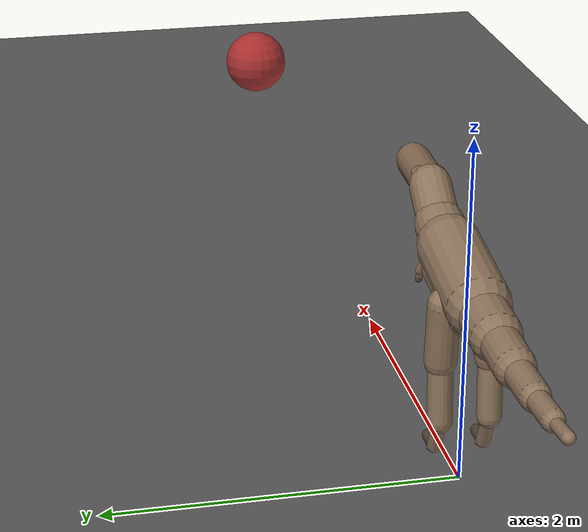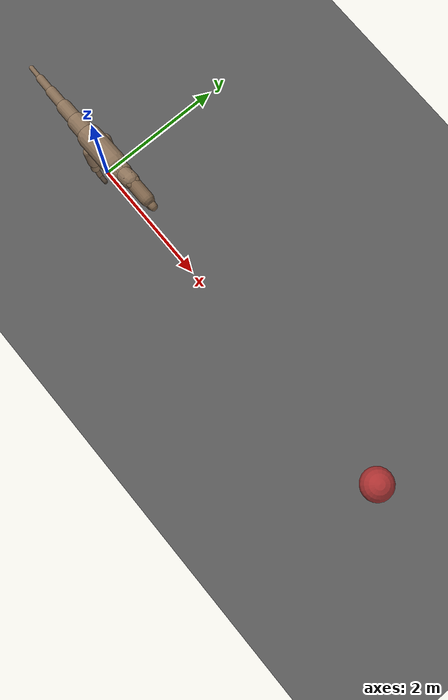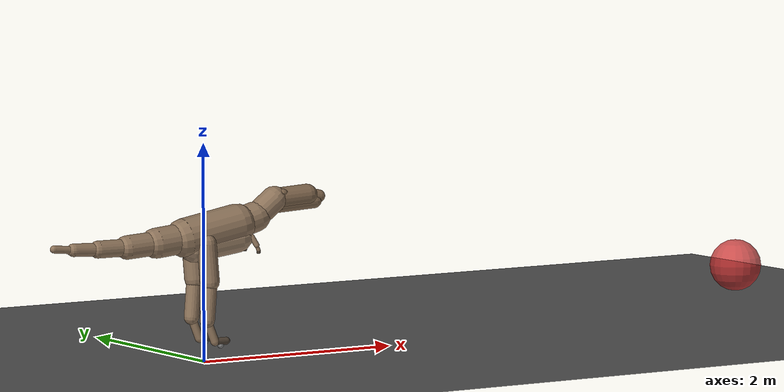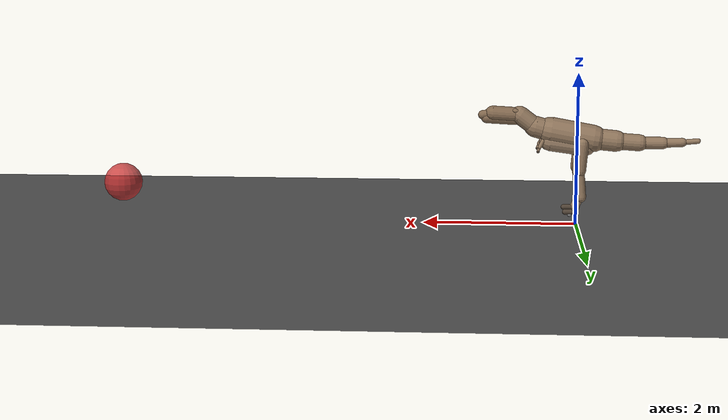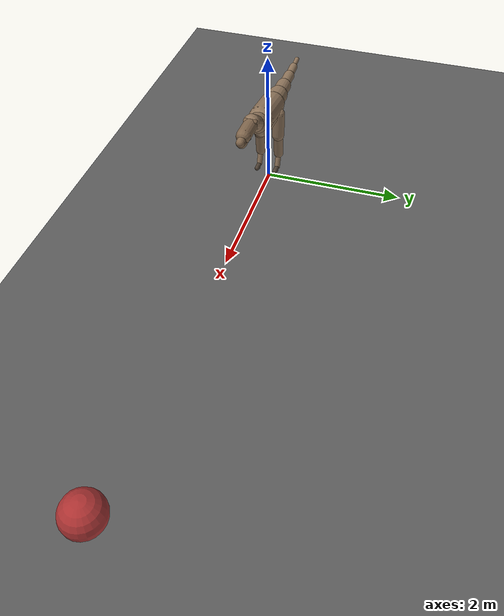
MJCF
<mujoco model="tyrannosaurus_rex">
  <compiler angle="degree" autolimits="true"/>

  <option timestep="0.002" gravity="0 0 -9.81">
    <flag warmstart="enable"/>
  </option>

  <default>
    <joint limited="true" damping="8.0" armature="0.05"/>
    <geom contype="1" conaffinity="1" friction="1.2 0.005 0.0001"/>
    <motor ctrllimited="true" ctrlrange="-1 1"/>

    <!-- Leg joints: high stiffness for massive biped -->
    <default class="leg_joint">
      <joint damping="15.0" armature="0.1"/>
    </default>

    <!-- Tail joints: very stiff, acts as heavy counterbalance to skull -->
    <default class="tail_joint">
      <joint damping="20.0" stiffness="40.0" armature="0.05" range="-12 12"/>
    </default>

    <!-- Jaw joint -->
    <default class="jaw_joint">
      <joint damping="5.0" armature="0.02"/>
    </default>
  </default>

  <asset>
    <texture type="skybox" builtin="gradient" rgb1="0.6 0.8 1.0" rgb2="0.2 0.4 0.6"
             width="256" height="256"/>
    <texture name="grid" type="2d" builtin="checker" rgb1="0.4 0.4 0.4" rgb2="0.3 0.3 0.3"
             width="512" height="512"/>
    <material name="grid_mat" texture="grid" texrepeat="8 8" reflectance="0.1"/>
    <material name="body_mat" rgba="0.55 0.45 0.35 1"/>
    <material name="belly_mat" rgba="0.6 0.5 0.4 1"/>
    <material name="head_mat" rgba="0.5 0.4 0.3 1"/>
    <material name="claw_mat" rgba="0.3 0.25 0.2 1"/>
    <material name="tooth_mat" rgba="0.9 0.88 0.8 1"/>
  </asset>

  <worldbody>
    <!-- Ground plane -->
    <geom name="floor" type="plane" size="100 100 0.1" material="grid_mat"
          conaffinity="1" contype="1"/>

    <!-- Prey target (mocap body) -->
    <body name="prey" mocap="true" pos="6 0 0.5">
      <geom name="prey_geom" type="sphere" size="0.25" rgba="0.8 0.2 0.2 0.8"
            contype="2" conaffinity="2"/>
    </body>

    <!-- ==================== T-REX BODY ==================== -->

    <body name="pelvis" pos="0 0 1.15">
      <freejoint name="root"/>

      <!-- Main torso: forward-leaning, angled ~30 deg from horizontal -->
      <!-- Pelvis region (rear of torso, widest part) -->
      <geom name="torso" type="capsule" fromto="-0.2 0 0  0.35 0 0.1" size="0.18"
            mass="20.0" material="body_mat"/>

      <!-- Ribcage (front of torso, narrowing toward neck) -->
      <geom name="ribcage" type="capsule" fromto="0.3 0 0.08  0.55 0 0.15" size="0.14"
            mass="10.0" material="body_mat"/>

      <!-- Belly (adds mass lower for stability) -->
      <geom name="belly" type="capsule" fromto="-0.1 0 -0.08  0.35 0 -0.02" size="0.15"
            mass="5.0" material="belly_mat"/>

      <!-- IMU sensor site (center of mass region) -->
      <site name="imu" pos="0.1 0 0.05" size="0.03"/>

      <!-- ==================== NECK + HEAD ==================== -->
      <!-- Short, thick, muscular neck angling up to massive skull -->

      <body name="neck" pos="0.55 0 0.15">
        <joint name="neck_pitch" type="hinge" axis="0 1 0" range="-30 40"
               damping="12.0" armature="0.05"/>
        <joint name="neck_yaw" type="hinge" axis="0 0 1" range="-20 20"
               damping="10.0" armature="0.03"/>
        <geom name="neck_geom" type="capsule" fromto="0 0 0  0.2 0 0.15" size="0.12"
              mass="5.0" material="body_mat" contype="0" conaffinity="0"/>

        <!-- Skull: massive, elongated, deep -->
        <body name="skull" pos="0.2 0 0.15">
          <joint name="head_pitch" type="hinge" axis="0 1 0" range="-25 35"
                 damping="8.0" armature="0.03"/>
          <!-- Upper skull -->
          <geom name="skull_upper" type="capsule" fromto="0 0 0  0.35 0 0.02" size="0.1"
                mass="6.0" material="head_mat"/>
          <!-- Brow ridges (T-Rex had prominent brow horns) -->
          <geom name="brow_ridge" type="ellipsoid" pos="0.05 0 0.06" size="0.08 0.1 0.04"
                mass="0.5" material="head_mat" contype="0" conaffinity="0"/>
          <!-- Snout (narrowing toward front) -->
          <geom name="snout" type="capsule" fromto="0.3 0 0.02  0.48 0 0" size="0.06"
                mass="2.0" material="head_mat"/>

          <!-- Head tip sensor for bite detection -->
          <site name="head_tip" pos="0.48 0 0" size="0.02"/>

          <!-- Jaw (lower mandible) -->
          <body name="jaw" pos="0.05 0 -0.06">
            <joint name="jaw_joint" class="jaw_joint" type="hinge" axis="0 1 0" range="-35 5"/>
            <geom name="jaw_geom" type="capsule" fromto="0 0 0  0.38 0 0.02" size="0.07"
                  mass="3.0" material="head_mat"/>
            <!-- Jaw contact geom for bite detection -->
            <geom name="jaw_bite" type="box" pos="0.35 0 0.04" size="0.06 0.05 0.02"
                  mass="0.2" material="tooth_mat" contype="2" conaffinity="2"/>
            <site name="jaw_tip" pos="0.38 0 0.02" size="0.015"/>
          </body>
        </body>
      </body>

      <!-- ==================== TAIL ==================== -->
      <!-- 5 segments, heavy, muscular - primary counterbalance to skull -->
      <!-- Starts thick at pelvis, tapers to tip -->

      <body name="tail_1" pos="-0.2 0 0">
        <joint name="tail_1_pitch" class="tail_joint" type="hinge" axis="0 1 0"/>
        <joint name="tail_1_yaw" class="tail_joint" type="hinge" axis="0 0 1" range="-8 8"/>
        <geom name="tail_1_geom" type="capsule" fromto="0 0 0  -0.3 0 -0.03" size="0.14"
              mass="6.0" material="body_mat" contype="0" conaffinity="0"/>

        <body name="tail_2" pos="-0.3 0 -0.03">
          <joint name="tail_2_pitch" class="tail_joint" type="hinge" axis="0 1 0"/>
          <geom name="tail_2_geom" type="capsule" fromto="0 0 0  -0.3 0 -0.02" size="0.11"
                mass="4.5" material="body_mat" contype="0" conaffinity="0"/>

          <body name="tail_3" pos="-0.3 0 -0.02">
            <joint name="tail_3_pitch" class="tail_joint" type="hinge" axis="0 1 0"/>
            <geom name="tail_3_geom" type="capsule" fromto="0 0 0  -0.3 0 0" size="0.08"
                  mass="3.0" material="body_mat" contype="0" conaffinity="0"/>

            <body name="tail_4" pos="-0.3 0 0">
              <joint name="tail_4_pitch" class="tail_joint" type="hinge" axis="0 1 0"/>
              <geom name="tail_4_geom" type="capsule" fromto="0 0 0  -0.25 0 0.01" size="0.06"
                    mass="1.5" material="body_mat" contype="0" conaffinity="0"/>

              <body name="tail_5" pos="-0.25 0 0.01">
                <joint name="tail_5_pitch" class="tail_joint" type="hinge" axis="0 1 0"/>
                <geom name="tail_5_geom" type="capsule" fromto="0 0 0  -0.2 0 0.02" size="0.035"
                      mass="0.6" material="body_mat" contype="0" conaffinity="0"/>
                <site name="tail_tip" pos="-0.2 0 0.02" size="0.015"/>
              </body>
            </body>
          </body>
        </body>
      </body>

      <!-- ==================== RIGHT LEG ==================== -->
      <!-- Massive, powerful digitigrade legs -->
      <!-- Hip -> Thigh -> Tibia -> Metatarsus -> Toes -->

      <body name="r_thigh" pos="-0.05 -0.14 -0.05">
        <!-- Hip: 2 DOF -->
        <joint name="r_hip_pitch" class="leg_joint" type="hinge" axis="0 1 0" range="-50 80"/>
        <joint name="r_hip_roll" class="leg_joint" type="hinge" axis="1 0 0" range="-25 25"/>
        <geom name="r_thigh_geom" type="capsule" fromto="0 0 0  0.03 0 -0.35" size="0.09"
              mass="5.0" material="body_mat"/>

        <body name="r_tibia" pos="0.03 0 -0.35">
          <!-- Knee: 1 DOF -->
          <joint name="r_knee" class="leg_joint" type="hinge" axis="0 1 0" range="-110 -10"/>
          <geom name="r_tibia_geom" type="capsule" fromto="0 0 0  -0.03 0 -0.35" size="0.07"
                mass="3.5" material="body_mat"/>

          <body name="r_metatarsus" pos="-0.03 0 -0.35">
            <!-- Ankle: 1 DOF (digitigrade stance) -->
            <joint name="r_ankle" class="leg_joint" type="hinge" axis="0 1 0" range="50 150"/>
            <geom name="r_metatarsus_geom" type="capsule" fromto="0 0 0  0.08 0 -0.2" size="0.04"
                  mass="1.2" material="body_mat"/>

            <!-- Toes (3 forward-facing digits fused as one contact pad) -->
            <body name="r_toe" pos="0.08 0 -0.2">
              <joint name="r_toe_joint" class="leg_joint" type="hinge" axis="0 1 0" range="-25 50"/>
              <geom name="r_toe_geom" type="capsule" fromto="0 0 0  0.12 0 0" size="0.035"
                    mass="0.4" material="claw_mat"/>
              <site name="r_foot" pos="0.06 0 -0.035" size="0.03"/>
            </body>
          </body>
        </body>
      </body>

      <!-- ==================== LEFT LEG ==================== -->

      <body name="l_thigh" pos="-0.05 0.14 -0.05">
        <joint name="l_hip_pitch" class="leg_joint" type="hinge" axis="0 1 0" range="-50 80"/>
        <joint name="l_hip_roll" class="leg_joint" type="hinge" axis="1 0 0" range="-25 25"/>
        <geom name="l_thigh_geom" type="capsule" fromto="0 0 0  0.03 0 -0.35" size="0.09"
              mass="5.0" material="body_mat"/>

        <body name="l_tibia" pos="0.03 0 -0.35">
          <joint name="l_knee" class="leg_joint" type="hinge" axis="0 1 0" range="-110 -10"/>
          <geom name="l_tibia_geom" type="capsule" fromto="0 0 0  -0.03 0 -0.35" size="0.07"
                mass="3.5" material="body_mat"/>

          <body name="l_metatarsus" pos="-0.03 0 -0.35">
            <joint name="l_ankle" class="leg_joint" type="hinge" axis="0 1 0" range="50 150"/>
            <geom name="l_metatarsus_geom" type="capsule" fromto="0 0 0  0.08 0 -0.2" size="0.04"
                  mass="1.2" material="body_mat"/>

            <body name="l_toe" pos="0.08 0 -0.2">
              <joint name="l_toe_joint" class="leg_joint" type="hinge" axis="0 1 0" range="-25 50"/>
              <geom name="l_toe_geom" type="capsule" fromto="0 0 0  0.12 0 0" size="0.035"
                    mass="0.4" material="claw_mat"/>
              <site name="l_foot" pos="0.06 0 -0.035" size="0.03"/>
            </body>
          </body>
        </body>
      </body>

      <!-- ==================== FORELIMBS (vestigial) ==================== -->
      <!-- T-Rex arms: tiny, 2 fingers, very limited range -->
      <!-- Not actuated - purely cosmetic/passive -->

      <body name="r_arm" pos="0.45 -0.1 -0.02">
        <joint name="r_shoulder" type="ball" damping="3.0" range="0 30"/>
        <geom name="r_upper_arm_geom" type="capsule" fromto="0 0 0  0.04 -0.02 -0.08" size="0.025"
              mass="0.3" material="body_mat"/>
        <body name="r_forearm" pos="0.04 -0.02 -0.08">
          <joint name="r_elbow" type="hinge" axis="0 1 0" range="-40 10" damping="2.0"/>
          <geom name="r_forearm_geom" type="capsule" fromto="0 0 0  0.02 0 -0.05" size="0.018"
                mass="0.1" material="body_mat"/>
          <!-- Two-fingered hand -->
          <geom name="r_hand" type="sphere" pos="0.02 0 -0.06" size="0.02"
                mass="0.05" material="claw_mat"/>
        </body>
      </body>

      <body name="l_arm" pos="0.45 0.1 -0.02">
        <joint name="l_shoulder" type="ball" damping="3.0" range="0 30"/>
        <geom name="l_upper_arm_geom" type="capsule" fromto="0 0 0  0.04 0.02 -0.08" size="0.025"
              mass="0.3" material="body_mat"/>
        <body name="l_forearm" pos="0.04 0.02 -0.08">
          <joint name="l_elbow" type="hinge" axis="0 1 0" range="-40 10" damping="2.0"/>
          <geom name="l_forearm_geom" type="capsule" fromto="0 0 0  0.02 0 -0.05" size="0.018"
                mass="0.1" material="body_mat"/>
          <geom name="l_hand" type="sphere" pos="0.02 0 -0.06" size="0.02"
                mass="0.05" material="claw_mat"/>
        </body>
      </body>

    </body> <!-- end pelvis -->
  </worldbody>

  <!-- ==================== ACTUATORS ==================== -->
  <!-- Position actuators for locomotion, motor for jaw -->

  <actuator>
    <!-- Head/neck control -->
    <position name="neck_pitch_act" joint="neck_pitch" kp="150" ctrlrange="-30 40"/>
    <position name="neck_yaw_act" joint="neck_yaw" kp="100" ctrlrange="-20 20"/>
    <position name="head_pitch_act" joint="head_pitch" kp="80" ctrlrange="-25 35"/>
    <motor name="jaw_act" joint="jaw_joint" gear="80" ctrlrange="-1 1"/>

    <!-- Right leg -->
    <position name="r_hip_pitch_act" joint="r_hip_pitch" kp="200" ctrlrange="-50 80"/>
    <position name="r_hip_roll_act" joint="r_hip_roll" kp="150" ctrlrange="-25 25"/>
    <position name="r_knee_act" joint="r_knee" kp="250" ctrlrange="-110 -10"/>
    <position name="r_ankle_act" joint="r_ankle" kp="150" ctrlrange="50 150"/>
    <position name="r_toe_act" joint="r_toe_joint" kp="60" ctrlrange="-25 50"/>

    <!-- Left leg -->
    <position name="l_hip_pitch_act" joint="l_hip_pitch" kp="200" ctrlrange="-50 80"/>
    <position name="l_hip_roll_act" joint="l_hip_roll" kp="150" ctrlrange="-25 25"/>
    <position name="l_knee_act" joint="l_knee" kp="250" ctrlrange="-110 -10"/>
    <position name="l_ankle_act" joint="l_ankle" kp="150" ctrlrange="50 150"/>
    <position name="l_toe_act" joint="l_toe_joint" kp="60" ctrlrange="-25 50"/>
  </actuator>

  <!-- ==================== SENSORS ==================== -->

  <sensor>
    <!-- IMU-like sensors on pelvis -->
    <gyro name="pelvis_gyro" site="imu"/>
    <accelerometer name="pelvis_accel" site="imu"/>
    <framequat name="pelvis_orientation" objtype="site" objname="imu"/>

    <!-- Foot contact forces -->
    <touch name="r_foot_touch" site="r_foot"/>
    <touch name="l_foot_touch" site="l_foot"/>

    <!-- Head/jaw positions for bite detection -->
    <framepos name="head_tip_pos" objtype="site" objname="head_tip"/>
    <framepos name="jaw_tip_pos" objtype="site" objname="jaw_tip"/>

    <!-- Tail tip for stability monitoring -->
    <framepos name="tail_tip_pos" objtype="site" objname="tail_tip"/>
    <framelinvel name="tail_tip_linvel" objtype="site" objname="tail_tip"/>
    <frameangvel name="tail_tip_angvel" objtype="site" objname="tail_tip"/>
  </sensor>

  <!-- ==================== CONTACT EXCLUSIONS ==================== -->

  <contact>
    <!-- Neck/head chain -->
    <exclude body1="pelvis" body2="neck"/>
    <exclude body1="neck" body2="skull"/>
    <exclude body1="skull" body2="jaw"/>

    <!-- Tail chain -->
    <exclude body1="pelvis" body2="tail_1"/>
    <exclude body1="tail_1" body2="tail_2"/>
    <exclude body1="tail_2" body2="tail_3"/>
    <exclude body1="tail_3" body2="tail_4"/>
    <exclude body1="tail_4" body2="tail_5"/>

    <!-- Thigh-torso -->
    <exclude body1="pelvis" body2="r_thigh"/>
    <exclude body1="pelvis" body2="l_thigh"/>

    <!-- Arm-torso -->
    <exclude body1="pelvis" body2="r_arm"/>
    <exclude body1="pelvis" body2="l_arm"/>
  </contact>

</mujoco>
